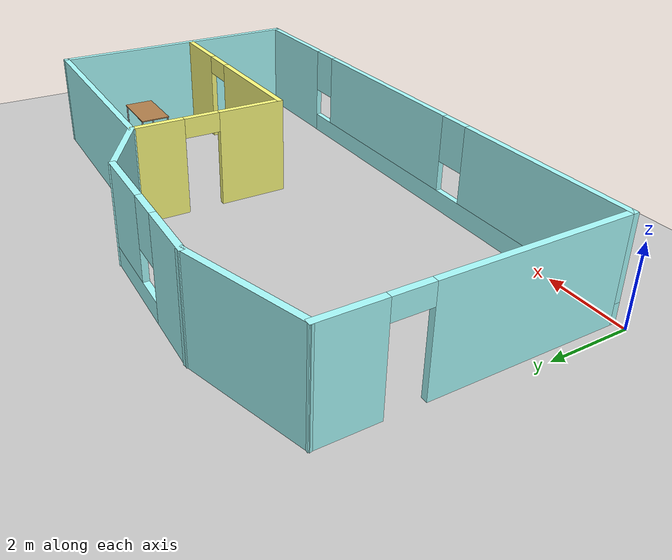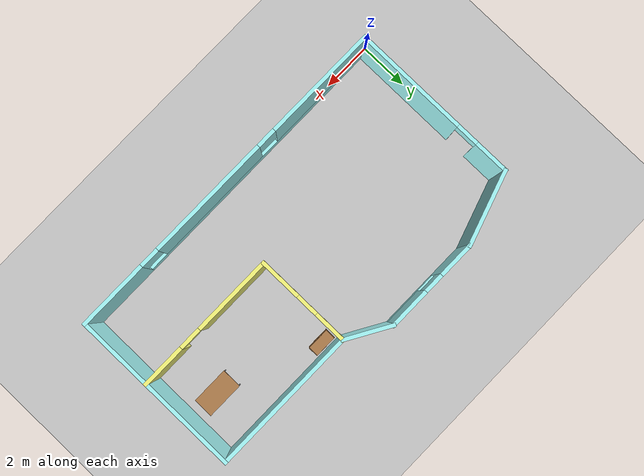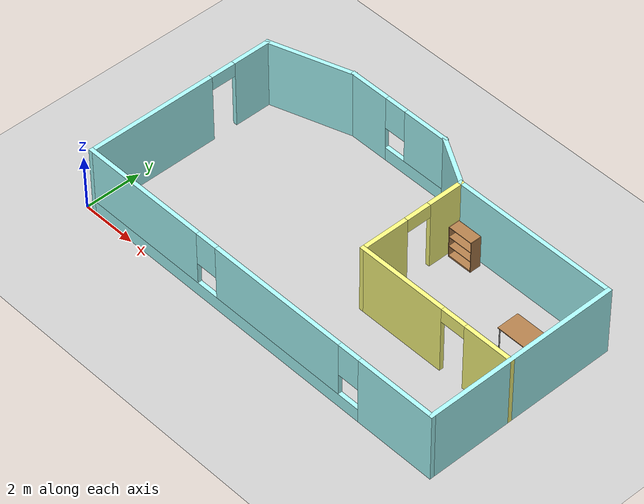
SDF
<sdf version="1.6">
 <world name="default">
  <plugin name="welcome" filename="libwelcome.so"/>
  <light name="sun" type="directional">
   <pose>0 0 10 0 -0 0</pose>
   <diffuse>0.8 0.8 0.8 1</diffuse>
   <specular>0.2 0.2 0.2 1</specular>
   <attenuation>
    <range>1000</range>
    <constant>0.9</constant>
    <linear>0.01</linear>
    <quadratic>0.001</quadratic>
   </attenuation>
   <direction>-0.5 0.1 -0.9</direction>
  </light>
  <model name="ground_plane">
   <static>1</static>
   <link name="link">
    <collision name="collision">
     <geometry><plane><normal>0 0 1</normal><size>100 100</size></plane></geometry>
     <surface><friction><ode><mu>100</mu><mu2>50</mu2></ode></friction></surface>
    </collision>
    <visual name="visual">
     <cast_shadows>0</cast_shadows>
     <geometry><plane><normal>0 0 1</normal><size>100 100</size></plane></geometry>
     <material>
      <script><uri>file://media/materials/scripts/gazebo.material</uri><name>Gazebo/Grey</name></script>
     </material>
    </visual>
   </link>
  </model>
  <gravity>0 0 -9.8</gravity>
  <magnetic_field>6e-06 2.3e-05 -4.2e-05</magnetic_field>
  <atmosphere type="adiabatic"/>
  <physics name="default_physics" default="0" type="ode">
   <max_step_size>0.001</max_step_size>
   <real_time_factor>1</real_time_factor>
   <real_time_update_rate>1000</real_time_update_rate>
  </physics>
  <scene><ambient>0.4 0.4 0.4 1</ambient><background>0.7 0.7 0.7 1</background><shadows>1</shadows></scene>
  <spherical_coordinates>
   <surface_model>EARTH_WGS84</surface_model>
   <latitude_deg>0</latitude_deg>
   <longitude_deg>0</longitude_deg>
   <elevation>0</elevation>
   <heading_deg>0</heading_deg>
  </spherical_coordinates>
  <model name="building">
   <pose>7.36159 3.9902 0 0 -0 0</pose>
   <link name="Wall_0">
    <pose>-2.31727 3.87377 0 0 -0 0</pose>
    <visual name="Wall_0_Visual_0">
     <pose>-1.24884 0 1.25 0 -0 0</pose>
     <geometry><box><size>1.50232 0.15 2.5</size></box></geometry>
     <material>
      <script><uri>file://media/materials/scripts/gazebo.material</uri><name>Gazebo/Grey</name></script>
      <ambient>0.666667 1 1 1</ambient>
     </material>
     <meta><layer>0</layer></meta>
    </visual>
    <collision name="Wall_0_Collision_0">
     <geometry><box><size>1.50232 0.15 2.5</size></box></geometry>
     <pose>-1.24884 0 1.25 0 -0 0</pose>
    </collision>
    <visual name="Wall_0_Visual_1">
     <pose>0.751159 0 0.25 0 -0 0</pose>
     <geometry><box><size>2.49768 0.15 0.5</size></box></geometry>
     <material>
      <script><uri>file://media/materials/scripts/gazebo.material</uri><name>Gazebo/Grey</name></script>
      <ambient>0.666667 1 1 1</ambient>
     </material>
     <meta><layer>0</layer></meta>
    </visual>
    <collision name="Wall_0_Collision_1">
     <geometry><box><size>2.49768 0.15 0.5</size></box></geometry>
     <pose>0.751159 0 0.25 0 -0 0</pose>
    </collision>
    <visual name="Wall_0_Visual_2">
     <pose>1.15116 0 1.5 0 -0 0</pose>
     <geometry><box><size>1.69768 0.15 2</size></box></geometry>
     <material>
      <script><uri>file://media/materials/scripts/gazebo.material</uri><name>Gazebo/Grey</name></script>
      <ambient>0.666667 1 1 1</ambient>
     </material>
     <meta><layer>0</layer></meta>
    </visual>
    <collision name="Wall_0_Collision_2">
     <geometry><box><size>1.69768 0.15 2</size></box></geometry>
     <pose>1.15116 0 1.5 0 -0 0</pose>
    </collision>
    <visual name="Wall_0_Visual_3">
     <pose>-0.097682 0 1.9 0 -0 0</pose>
     <geometry><box><size>0.8 0.15 1.2</size></box></geometry>
     <material>
      <script><uri>file://media/materials/scripts/gazebo.material</uri><name>Gazebo/Grey</name></script>
      <ambient>0.666667 1 1 1</ambient>
     </material>
     <meta><layer>0</layer></meta>
    </visual>
    <collision name="Wall_0_Collision_3">
     <geometry><box><size>0.8 0.15 1.2</size></box></geometry>
     <pose>-0.097682 0 1.9 0 -0 0</pose>
    </collision>
   </link>
   <link name="Wall_1">
    <collision name="Wall_1_Collision">
     <geometry><box><size>2 0.15 2.5</size></box></geometry>
     <pose>0 0 1.25 0 -0 0</pose>
    </collision>
    <visual name="Wall_1_Visual">
     <pose>0 0 1.25 0 -0 0</pose>
     <geometry><box><size>2 0.15 2.5</size></box></geometry>
     <material>
      <script><uri>file://media/materials/scripts/gazebo.material</uri><name>Gazebo/Grey</name></script>
      <ambient>0.666667 1 1 1</ambient>
     </material>
     <meta><layer>0</layer></meta>
    </visual>
    <pose>0.408802 3.41127 0 0 0 -0.523599</pose>
   </link>
   <link name="Wall_2">
    <collision name="Wall_2_Collision">
     <geometry><box><size>6 0.15 2.5</size></box></geometry>
     <pose>0 0 1.25 0 -0 0</pose>
    </collision>
    <visual name="Wall_2_Visual">
     <pose>0 0 1.25 0 -0 0</pose>
     <geometry><box><size>6 0.15 2.5</size></box></geometry>
     <material>
      <script><uri>file://media/materials/scripts/gazebo.material</uri><name>Gazebo/Grey</name></script>
      <ambient>0.666667 1 1 1</ambient>
     </material>
     <meta><layer>0</layer></meta>
    </visual>
    <pose>4.13488 2.94877 0 0 -0 0</pose>
   </link>
   <link name="Wall_3">
    <collision name="Wall_3_Collision">
     <geometry><box><size>7 0.15 2.5</size></box></geometry>
     <pose>0 0 1.25 0 -0 0</pose>
    </collision>
    <visual name="Wall_3_Visual">
     <pose>0 0 1.25 0 -0 0</pose>
     <geometry><box><size>7 0.15 2.5</size></box></geometry>
     <material>
      <script><uri>file://media/materials/scripts/gazebo.material</uri><name>Gazebo/Grey</name></script>
      <ambient>0.666667 1 1 1</ambient>
     </material>
     <meta><layer>0</layer></meta>
    </visual>
    <pose>7.05987 -0.476226 0 0 0 -1.5708</pose>
   </link>
   <link name="Wall_4">
    <pose>0.009875 -3.90123 0 0 -0 3.14159</pose>
    <visual name="Wall_4_Visual_0">
     <pose>-5.68428 0 1.25 0 -0 0</pose>
     <geometry><box><size>2.88143 0.15 2.5</size></box></geometry>
     <material>
      <script><uri>file://media/materials/scripts/gazebo.material</uri><name>Gazebo/Grey</name></script>
      <ambient>0.666667 1 1 1</ambient>
     </material>
     <meta><layer>0</layer></meta>
    </visual>
    <collision name="Wall_4_Collision_0">
     <geometry><box><size>2.88143 0.15 2.5</size></box></geometry>
     <pose>-5.68428 0 1.25 0 -0 0</pose>
    </collision>
    <visual name="Wall_4_Visual_1">
     <pose>1.44072 0 0.25 0 -0 0</pose>
     <geometry><box><size>11.3686 0.15 0.5</size></box></geometry>
     <material>
      <script><uri>file://media/materials/scripts/gazebo.material</uri><name>Gazebo/Grey</name></script>
      <ambient>0.666667 1 1 1</ambient>
     </material>
     <meta><layer>0</layer></meta>
    </visual>
    <collision name="Wall_4_Collision_1">
     <geometry><box><size>11.3686 0.15 0.5</size></box></geometry>
     <pose>1.44072 0 0.25 0 -0 0</pose>
    </collision>
    <visual name="Wall_4_Visual_2">
     <pose>-0.905979 0 1.5 0 -0 0</pose>
     <geometry><box><size>5.07517 0.15 2</size></box></geometry>
     <material>
      <script><uri>file://media/materials/scripts/gazebo.material</uri><name>Gazebo/Grey</name></script>
      <ambient>0.666667 1 1 1</ambient>
     </material>
     <meta><layer>0</layer></meta>
    </visual>
    <collision name="Wall_4_Collision_2">
     <geometry><box><size>5.07517 0.15 2</size></box></geometry>
     <pose>-0.905979 0 1.5 0 -0 0</pose>
    </collision>
    <visual name="Wall_4_Visual_3">
     <pose>4.7783 0 1.5 0 -0 0</pose>
     <geometry><box><size>4.69339 0.15 2</size></box></geometry>
     <material>
      <script><uri>file://media/materials/scripts/gazebo.material</uri><name>Gazebo/Grey</name></script>
      <ambient>0.666667 1 1 1</ambient>
     </material>
     <meta><layer>0</layer></meta>
    </visual>
    <collision name="Wall_4_Collision_3">
     <geometry><box><size>4.69339 0.15 2</size></box></geometry>
     <pose>4.7783 0 1.5 0 -0 0</pose>
    </collision>
    <visual name="Wall_4_Visual_4">
     <pose>-3.84357 0 1.9 0 -0 0</pose>
     <geometry><box><size>0.8 0.15 1.2</size></box></geometry>
     <material>
      <script><uri>file://media/materials/scripts/gazebo.material</uri><name>Gazebo/Grey</name></script>
      <ambient>0.666667 1 1 1</ambient>
     </material>
     <meta><layer>0</layer></meta>
    </visual>
    <collision name="Wall_4_Collision_4">
     <geometry><box><size>0.8 0.15 1.2</size></box></geometry>
     <pose>-3.84357 0 1.9 0 -0 0</pose>
    </collision>
    <visual name="Wall_4_Visual_5">
     <pose>2.03161 0 1.9 0 -0 0</pose>
     <geometry><box><size>0.8 0.15 1.2</size></box></geometry>
     <material>
      <script><uri>file://media/materials/scripts/gazebo.material</uri><name>Gazebo/Grey</name></script>
      <ambient>0.666667 1 1 1</ambient>
     </material>
     <meta><layer>0</layer></meta>
    </visual>
    <collision name="Wall_4_Collision_5">
     <geometry><box><size>0.8 0.15 1.2</size></box></geometry>
     <pose>2.03161 0 1.9 0 -0 0</pose>
    </collision>
   </link>
   <link name="Wall_5">
    <pose>-7.04012 -0.476226 0 0 -0 1.5708</pose>
    <visual name="Wall_5_Visual_0">
     <pose>-1.17627 0 1.25 0 -0 0</pose>
     <geometry><box><size>4.64746 0.15 2.5</size></box></geometry>
     <material>
      <script><uri>file://media/materials/scripts/gazebo.material</uri><name>Gazebo/Grey</name></script>
      <ambient>0.666667 1 1 1</ambient>
     </material>
     <meta><layer>0</layer></meta>
    </visual>
    <collision name="Wall_5_Collision_0">
     <geometry><box><size>4.64746 0.15 2.5</size></box></geometry>
     <pose>-1.17627 0 1.25 0 -0 0</pose>
    </collision>
    <visual name="Wall_5_Visual_1">
     <pose>2.77373 0 1.25 0 -0 0</pose>
     <geometry><box><size>1.45254 0.15 2.5</size></box></geometry>
     <material>
      <script><uri>file://media/materials/scripts/gazebo.material</uri><name>Gazebo/Grey</name></script>
      <ambient>0.666667 1 1 1</ambient>
     </material>
     <meta><layer>0</layer></meta>
    </visual>
    <collision name="Wall_5_Collision_1">
     <geometry><box><size>1.45254 0.15 2.5</size></box></geometry>
     <pose>2.77373 0 1.25 0 -0 0</pose>
    </collision>
    <visual name="Wall_5_Visual_2">
     <pose>1.59746 0 2.25 0 -0 0</pose>
     <geometry><box><size>0.9 0.15 0.5</size></box></geometry>
     <material>
      <script><uri>file://media/materials/scripts/gazebo.material</uri><name>Gazebo/Grey</name></script>
      <ambient>0.666667 1 1 1</ambient>
     </material>
     <meta><layer>0</layer></meta>
    </visual>
    <collision name="Wall_5_Collision_2">
     <geometry><box><size>0.9 0.15 0.5</size></box></geometry>
     <pose>1.59746 0 2.25 0 -0 0</pose>
    </collision>
   </link>
   <link name="Wall_6">
    <collision name="Wall_6_Collision">
     <geometry><box><size>3.0968 0.15 2.5</size></box></geometry>
     <pose>0 0 1.25 0 -0 0</pose>
    </collision>
    <visual name="Wall_6_Visual">
     <pose>0 0 1.25 0 -0 0</pose>
     <geometry><box><size>3.0968 0.15 2.5</size></box></geometry>
     <material>
      <script><uri>file://media/materials/scripts/gazebo.material</uri><name>Gazebo/Grey</name></script>
      <ambient>0.666667 1 1 1</ambient>
     </material>
     <meta><layer>0</layer></meta>
    </visual>
    <pose>-5.6412 3.41127 0 0 -0 0.319298</pose>
   </link>
   <link name="Wall_8">
    <pose>1.20988 1.02377 0 0 0 -1.5708</pose>
    <visual name="Wall_8_Visual_0">
     <pose>-1.31999 0 1.25 0 -0 0</pose>
     <geometry><box><size>1.36002 0.15 2.5</size></box></geometry>
     <material>
      <script><uri>file://media/materials/scripts/gazebo.material</uri><name>Gazebo/Grey</name></script>
      <ambient>1 1 0.498039 1</ambient>
     </material>
     <meta><layer>0</layer></meta>
    </visual>
    <collision name="Wall_8_Collision_0">
     <geometry><box><size>1.36002 0.15 2.5</size></box></geometry>
     <pose>-1.31999 0 1.25 0 -0 0</pose>
    </collision>
    <visual name="Wall_8_Visual_1">
     <pose>1.13001 0 1.25 0 -0 0</pose>
     <geometry><box><size>1.73998 0.15 2.5</size></box></geometry>
     <material>
      <script><uri>file://media/materials/scripts/gazebo.material</uri><name>Gazebo/Grey</name></script>
      <ambient>1 1 0.498039 1</ambient>
     </material>
     <meta><layer>0</layer></meta>
    </visual>
    <collision name="Wall_8_Collision_1">
     <geometry><box><size>1.73998 0.15 2.5</size></box></geometry>
     <pose>1.13001 0 1.25 0 -0 0</pose>
    </collision>
    <visual name="Wall_8_Visual_2">
     <pose>-0.18998 0 2.25 0 -0 0</pose>
     <geometry><box><size>0.9 0.15 0.5</size></box></geometry>
     <material>
      <script><uri>file://media/materials/scripts/gazebo.material</uri><name>Gazebo/Grey</name></script>
      <ambient>1 1 0.498039 1</ambient>
     </material>
     <meta><layer>0</layer></meta>
    </visual>
    <collision name="Wall_8_Collision_2">
     <geometry><box><size>0.9 0.15 0.5</size></box></geometry>
     <pose>-0.18998 0 2.25 0 -0 0</pose>
    </collision>
   </link>
   <link name="Wall_9">
    <pose>4.13488 -0.901226 0 0 -0 0</pose>
    <visual name="Wall_9_Visual_0">
     <pose>-1.35684 0 1.25 0 -0 0</pose>
     <geometry><box><size>3.28631 0.15 2.5</size></box></geometry>
     <material>
      <script><uri>file://media/materials/scripts/gazebo.material</uri><name>Gazebo/Grey</name></script>
      <ambient>1 1 0.498039 1</ambient>
     </material>
     <meta><layer>0</layer></meta>
    </visual>
    <collision name="Wall_9_Collision_0">
     <geometry><box><size>3.28631 0.15 2.5</size></box></geometry>
     <pose>-1.35684 0 1.25 0 -0 0</pose>
    </collision>
    <visual name="Wall_9_Visual_1">
     <pose>2.09316 0 1.25 0 -0 0</pose>
     <geometry><box><size>1.81369 0.15 2.5</size></box></geometry>
     <material>
      <script><uri>file://media/materials/scripts/gazebo.material</uri><name>Gazebo/Grey</name></script>
      <ambient>1 1 0.498039 1</ambient>
     </material>
     <meta><layer>0</layer></meta>
    </visual>
    <collision name="Wall_9_Collision_1">
     <geometry><box><size>1.81369 0.15 2.5</size></box></geometry>
     <pose>2.09316 0 1.25 0 -0 0</pose>
    </collision>
    <visual name="Wall_9_Visual_2">
     <pose>0.736312 0 2.25 0 -0 0</pose>
     <geometry><box><size>0.9 0.15 0.5</size></box></geometry>
     <material>
      <script><uri>file://media/materials/scripts/gazebo.material</uri><name>Gazebo/Grey</name></script>
      <ambient>1 1 0.498039 1</ambient>
     </material>
     <meta><layer>0</layer></meta>
    </visual>
    <collision name="Wall_9_Collision_2">
     <geometry><box><size>0.9 0.15 0.5</size></box></geometry>
     <pose>0.736312 0 2.25 0 -0 0</pose>
    </collision>
   </link>
   <static>1</static>
  </model>
  <model name="table">
   <static>1</static>
   <link name="link">
    <collision name="surface">
     <pose>0 0 1 0 -0 0</pose>
     <geometry><box><size>1.5 0.8 0.03</size></box></geometry>
     <surface><friction><ode><mu>0.6</mu><mu2>0.6</mu2></ode></friction></surface>
    </collision>
    <visual name="visual1">
     <pose>0 0 1 0 -0 0</pose>
     <geometry><box><size>1.5 0.8 0.03</size></box></geometry>
     <material>
      <script><uri>file://media/materials/scripts/gazebo.material</uri><name>Gazebo/Wood</name></script>
     </material>
    </visual>
    <collision name="front_left_leg">
     <pose>0.68 0.38 0.5 0 -0 0</pose>
     <geometry><cylinder><radius>0.02</radius><length>1</length></cylinder></geometry>
    </collision>
    <visual name="front_left_leg">
     <pose>0.68 0.38 0.5 0 -0 0</pose>
     <geometry><cylinder><radius>0.02</radius><length>1</length></cylinder></geometry>
     <material>
      <script><uri>file://media/materials/scripts/gazebo.material</uri><name>Gazebo/Grey</name></script>
     </material>
    </visual>
    <collision name="front_right_leg">
     <pose>0.68 -0.38 0.5 0 -0 0</pose>
     <geometry><cylinder><radius>0.02</radius><length>1</length></cylinder></geometry>
    </collision>
    <visual name="front_right_leg">
     <pose>0.68 -0.38 0.5 0 -0 0</pose>
     <geometry><cylinder><radius>0.02</radius><length>1</length></cylinder></geometry>
     <material>
      <script><uri>file://media/materials/scripts/gazebo.material</uri><name>Gazebo/Grey</name></script>
     </material>
    </visual>
    <collision name="back_right_leg">
     <pose>-0.68 -0.38 0.5 0 -0 0</pose>
     <geometry><cylinder><radius>0.02</radius><length>1</length></cylinder></geometry>
    </collision>
    <visual name="back_right_leg">
     <pose>-0.68 -0.38 0.5 0 -0 0</pose>
     <geometry><cylinder><radius>0.02</radius><length>1</length></cylinder></geometry>
     <material>
      <script><uri>file://media/materials/scripts/gazebo.material</uri><name>Gazebo/Grey</name></script>
     </material>
    </visual>
    <collision name="back_left_leg">
     <pose>-0.68 0.38 0.5 0 -0 0</pose>
     <geometry><cylinder><radius>0.02</radius><length>1</length></cylinder></geometry>
    </collision>
    <visual name="back_left_leg">
     <pose>-0.68 0.38 0.5 0 -0 0</pose>
     <geometry><cylinder><radius>0.02</radius><length>1</length></cylinder></geometry>
     <material>
      <script><uri>file://media/materials/scripts/gazebo.material</uri><name>Gazebo/Grey</name></script>
     </material>
    </visual>
   </link>
   <pose>13.1288 5.08962 0 0 -0 0</pose>
  </model>
  <model name="bookshelf">
   <static>1</static>
   <link name="link">
    <inertial><mass>1</mass></inertial>
    <collision name="back">
     <pose>0 0.005 0.6 0 -0 0</pose>
     <geometry><box><size>0.9 0.01 1.2</size></box></geometry>
    </collision>
    <visual name="visual1">
     <pose>0 0.005 0.6 0 -0 0</pose>
     <geometry><box><size>0.9 0.01 1.2</size></box></geometry>
     <material>
      <script><uri>file://media/materials/scripts/gazebo.material</uri><name>Gazebo/Wood</name></script>
     </material>
    </visual>
    <collision name="left_side">
     <pose>0.45 -0.195 0.6 0 -0 0</pose>
     <geometry><box><size>0.02 0.4 1.2</size></box></geometry>
    </collision>
    <visual name="visual2">
     <pose>0.45 -0.195 0.6 0 -0 0</pose>
     <geometry><box><size>0.02 0.4 1.2</size></box></geometry>
     <material>
      <script><uri>file://media/materials/scripts/gazebo.material</uri><name>Gazebo/Wood</name></script>
     </material>
    </visual>
    <collision name="right_side">
     <pose>-0.45 -0.195 0.6 0 -0 0</pose>
     <geometry><box><size>0.02 0.4 1.2</size></box></geometry>
    </collision>
    <visual name="visual3">
     <pose>-0.45 -0.195 0.6 0 -0 0</pose>
     <geometry><box><size>0.02 0.4 1.2</size></box></geometry>
     <material>
      <script><uri>file://media/materials/scripts/gazebo.material</uri><name>Gazebo/Wood</name></script>
     </material>
    </visual>
    <collision name="bottom">
     <pose>0 -0.195 0.03 0 -0 0</pose>
     <geometry><box><size>0.88 0.4 0.06</size></box></geometry>
    </collision>
    <visual name="visual4">
     <pose>0 -0.195 0.03 0 -0 0</pose>
     <geometry><box><size>0.88 0.4 0.06</size></box></geometry>
     <material>
      <script><uri>file://media/materials/scripts/gazebo.material</uri><name>Gazebo/Wood</name></script>
     </material>
    </visual>
    <collision name="top">
     <pose>0 -0.195 1.19 0 -0 0</pose>
     <geometry><box><size>0.88 0.4 0.02</size></box></geometry>
    </collision>
    <visual name="visual5">
     <pose>0 -0.195 1.19 0 -0 0</pose>
     <geometry><box><size>0.88 0.4 0.02</size></box></geometry>
     <material>
      <script><uri>file://media/materials/scripts/gazebo.material</uri><name>Gazebo/Wood</name></script>
     </material>
    </visual>
    <collision name="low_shelf">
     <pose>0 -0.195 0.43 0 -0 0</pose>
     <geometry><box><size>0.88 0.4 0.02</size></box></geometry>
    </collision>
    <visual name="visual6">
     <pose>0 -0.195 0.43 0 -0 0</pose>
     <geometry><box><size>0.88 0.4 0.02</size></box></geometry>
     <material>
      <script><uri>file://media/materials/scripts/gazebo.material</uri><name>Gazebo/Wood</name></script>
     </material>
    </visual>
    <collision name="high_shelf">
     <pose>0 -0.195 0.8 0 -0 0</pose>
     <geometry><box><size>0.88 0.4 0.02</size></box></geometry>
    </collision>
    <visual name="visual7">
     <pose>0 -0.195 0.8 0 -0 0</pose>
     <geometry><box><size>0.88 0.4 0.02</size></box></geometry>
     <material>
      <script><uri>file://media/materials/scripts/gazebo.material</uri><name>Gazebo/Wood</name></script>
     </material>
    </visual>
   </link>
   <pose>9.18153 6.73978 0 0 -0 0</pose>
  </model>
 </world>
</sdf>
